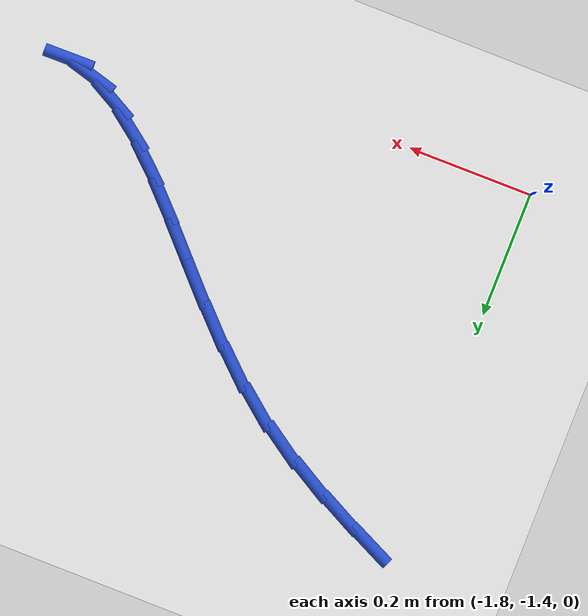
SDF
<sdf version="1.6">
 <world name="default">
  <model name="ground_plane">
   <static>1</static>
   <link name="link">
    <collision name="collision">
     <geometry><plane><normal>0 0 1</normal><size>100 100</size></plane></geometry>
     <surface><friction><ode><mu>100</mu><mu2>50</mu2></ode></friction></surface>
    </collision>
    <visual name="visual">
     <cast_shadows>0</cast_shadows>
     <geometry><plane><normal>0 0 1</normal><size>100 100</size></plane></geometry>
     <material>
      <script><uri>file://media/materials/scripts/gazebo.material</uri><name>Gazebo/WhiteGlow</name></script>
     </material>
    </visual>
   </link>
  </model>
  <model name="line">
   <link name="link_77">
    <pose>-1.7659602645795924 -0.8061876373744513 0.01 0 1.57 -0.4443613383057529</pose>
    <collision name="collision">
     <geometry><cylinder><radius>0.01</radius><length>0.08</length></cylinder></geometry>
    </collision>
    <visual name="visual">
     <material>
      <script><name>Gazebo/Blue</name><uri>file://media/materials/scripts/gazebo.material</uri></script>
     </material>
     <geometry><cylinder><radius>0.01</radius><length>0.08</length></cylinder></geometry>
    </visual>
   </link>
   <link name="link_78">
    <pose>-1.7053995078875994 -0.8350217935855903 0.01 0 1.57 -0.47422198029184826</pose>
    <collision name="collision">
     <geometry><cylinder><radius>0.01</radius><length>0.08</length></cylinder></geometry>
    </collision>
    <visual name="visual">
     <material>
      <script><name>Gazebo/Blue</name><uri>file://media/materials/scripts/gazebo.material</uri></script>
     </material>
     <geometry><cylinder><radius>0.01</radius><length>0.08</length></cylinder></geometry>
    </visual>
   </link>
   <link name="link_79">
    <pose>-1.6444330235061155 -0.8663152022768329 0.01 0 1.57 -0.5249060032036895</pose>
    <collision name="collision">
     <geometry><cylinder><radius>0.01</radius><length>0.08</length></cylinder></geometry>
    </collision>
    <visual name="visual">
     <material>
      <script><name>Gazebo/Blue</name><uri>file://media/materials/scripts/gazebo.material</uri></script>
     </material>
     <geometry><cylinder><radius>0.01</radius><length>0.08</length></cylinder></geometry>
    </visual>
   </link>
   <link name="link_80">
    <pose>-1.584292978872142 -0.9011419747692806 0.01 0 1.57 -0.5964566086476745</pose>
    <collision name="collision">
     <geometry><cylinder><radius>0.01</radius><length>0.08</length></cylinder></geometry>
    </collision>
    <visual name="visual">
     <material>
      <script><name>Gazebo/Blue</name><uri>file://media/materials/scripts/gazebo.material</uri></script>
     </material>
     <geometry><cylinder><radius>0.01</radius><length>0.08</length></cylinder></geometry>
    </visual>
   </link>
   <link name="link_81">
    <pose>-1.526211541422681 -0.9405762223840348 0.01 0 1.57 -0.681695253568772</pose>
    <collision name="collision">
     <geometry><cylinder><radius>0.01</radius><length>0.08</length></cylinder></geometry>
    </collision>
    <visual name="visual">
     <material>
      <script><name>Gazebo/Blue</name><uri>file://media/materials/scripts/gazebo.material</uri></script>
     </material>
     <geometry><cylinder><radius>0.01</radius><length>0.08</length></cylinder></geometry>
    </visual>
   </link>
   <link name="link_82">
    <pose>-1.4711706531552489 -0.985240200415606 0.01 0 1.57 -0.7500810594713242</pose>
    <collision name="collision">
     <geometry><cylinder><radius>0.01</radius><length>0.08</length></cylinder></geometry>
    </collision>
    <visual name="visual">
     <material>
      <script><name>Gazebo/Blue</name><uri>file://media/materials/scripts/gazebo.material</uri></script>
     </material>
     <geometry><cylinder><radius>0.01</radius><length>0.08</length></cylinder></geometry>
    </visual>
   </link>
   <link name="link_83">
    <pose>-1.4190638056715046 -1.033790645096902 0.01 0 1.57 -0.7952261346251697</pose>
    <collision name="collision">
     <geometry><cylinder><radius>0.01</radius><length>0.08</length></cylinder></geometry>
    </collision>
    <visual name="visual">
     <material>
      <script><name>Gazebo/Blue</name><uri>file://media/materials/scripts/gazebo.material</uri></script>
     </material>
     <geometry><cylinder><radius>0.01</radius><length>0.08</length></cylinder></geometry>
    </visual>
   </link>
   <link name="link_84">
    <pose>-1.369488609669823 -1.0843499921933195 0.01 0 1.57 -0.8184495704774515</pose>
    <collision name="collision">
     <geometry><cylinder><radius>0.01</radius><length>0.08</length></cylinder></geometry>
    </collision>
    <visual name="visual">
     <material>
      <script><name>Gazebo/Blue</name><uri>file://media/materials/scripts/gazebo.material</uri></script>
     </material>
     <geometry><cylinder><radius>0.01</radius><length>0.08</length></cylinder></geometry>
    </visual>
   </link>
   <link name="link_85">
    <pose>-1.3220426699075356 -1.1350406667419415 0.01 0 1.57 -0.8194567061347496</pose>
    <collision name="collision">
     <geometry><cylinder><radius>0.01</radius><length>0.08</length></cylinder></geometry>
    </collision>
    <visual name="visual">
     <material>
      <script><name>Gazebo/Blue</name><uri>file://media/materials/scripts/gazebo.material</uri></script>
     </material>
     <geometry><cylinder><radius>0.01</radius><length>0.08</length></cylinder></geometry>
    </visual>
   </link>
   <link name="link_86">
    <pose>-1.276323591141974 -1.1839850937798484 0.01 0 1.57 -0.7957192515827058</pose>
    <collision name="collision">
     <geometry><cylinder><radius>0.01</radius><length>0.08</length></cylinder></geometry>
    </collision>
    <visual name="visual">
     <material>
      <script><name>Gazebo/Blue</name><uri>file://media/materials/scripts/gazebo.material</uri></script>
     </material>
     <geometry><cylinder><radius>0.01</radius><length>0.08</length></cylinder></geometry>
    </visual>
   </link>
   <link name="link_87">
    <pose>-1.2319289781304668 -1.2293056983441222 0.01 0 1.57 -0.7415643473804111</pose>
    <collision name="collision">
     <geometry><cylinder><radius>0.01</radius><length>0.08</length></cylinder></geometry>
    </collision>
    <visual name="visual">
     <material>
      <script><name>Gazebo/Blue</name><uri>file://media/materials/scripts/gazebo.material</uri></script>
     </material>
     <geometry><cylinder><radius>0.01</radius><length>0.08</length></cylinder></geometry>
    </visual>
   </link>
   <link name="link_88">
    <pose>-1.188456435630345 -1.269124905471845 0.01 0 1.57 -0.6468538623021787</pose>
    <collision name="collision">
     <geometry><cylinder><radius>0.01</radius><length>0.08</length></cylinder></geometry>
    </collision>
    <visual name="visual">
     <material>
      <script><name>Gazebo/Blue</name><uri>file://media/materials/scripts/gazebo.material</uri></script>
     </material>
     <geometry><cylinder><radius>0.01</radius><length>0.08</length></cylinder></geometry>
    </visual>
   </link>
   <link name="link_89">
    <pose>-1.1455035683989392 -1.3015651402000992 0.01 0 1.57 -0.49608115380035417</pose>
    <collision name="collision">
     <geometry><cylinder><radius>0.01</radius><length>0.08</length></cylinder></geometry>
    </collision>
    <visual name="visual">
     <material>
      <script><name>Gazebo/Blue</name><uri>file://media/materials/scripts/gazebo.material</uri></script>
     </material>
     <geometry><cylinder><radius>0.01</radius><length>0.08</length></cylinder></geometry>
    </visual>
   </link>
   <link name="link_90">
    <pose>-1.1026679811935793 -1.3247488275659647 0.01 0 1.57 -0.27248753190781383</pose>
    <collision name="collision">
     <geometry><cylinder><radius>0.01</radius><length>0.08</length></cylinder></geometry>
    </collision>
    <visual name="visual">
     <material>
      <script><name>Gazebo/Blue</name><uri>file://media/materials/scripts/gazebo.material</uri></script>
     </material>
     <geometry><cylinder><radius>0.01</radius><length>0.08</length></cylinder></geometry>
    </visual>
   </link>
   <link name="link_91">
    <pose>-1.0595472787715972 -1.3367983926065248 0.01 0 1.57 0.012099557578601391</pose>
    <collision name="collision">
     <geometry><cylinder><radius>0.01</radius><length>0.08</length></cylinder></geometry>
    </collision>
    <visual name="visual">
     <material>
      <script><name>Gazebo/Blue</name><uri>file://media/materials/scripts/gazebo.material</uri></script>
     </material>
     <geometry><cylinder><radius>0.01</radius><length>0.08</length></cylinder></geometry>
    </visual>
   </link>
  </model>
 </world>
</sdf>
